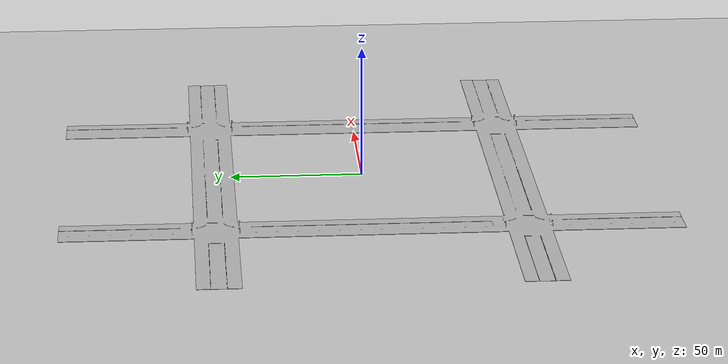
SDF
<sdf version="1.6">
 <world name="default">
  <light name="sun" type="directional">
   <pose>0 0 10 0 -0 0</pose>
   <diffuse>0.8 0.8 0.8 1</diffuse>
   <specular>0.2 0.2 0.2 1</specular>
   <attenuation>
    <range>1000</range>
    <constant>0.9</constant>
    <linear>0.01</linear>
    <quadratic>0.001</quadratic>
   </attenuation>
   <direction>-0.5 0.1 -0.9</direction>
  </light>
  <model name="ground_plane">
   <static>1</static>
   <link name="link">
    <collision name="collision">
     <geometry><plane><normal>0 0 1</normal><size>100 100</size></plane></geometry>
     <surface><friction><ode><mu>100</mu><mu2>50</mu2></ode></friction></surface>
    </collision>
    <visual name="visual">
     <cast_shadows>0</cast_shadows>
     <geometry><plane><normal>0 0 1</normal><size>100 100</size></plane></geometry>
     <material>
      <script><uri>file://media/materials/scripts/gazebo.material</uri><name>Gazebo/Grey</name></script>
     </material>
    </visual>
   </link>
  </model>
  <gravity>0 0 -9.8</gravity>
  <magnetic_field>6e-06 2.3e-05 -4.2e-05</magnetic_field>
  <atmosphere type="adiabatic"/>
  <physics name="default_physics" default="0" type="ode">
   <max_step_size>0.001</max_step_size>
   <real_time_factor>1</real_time_factor>
   <real_time_update_rate>1000</real_time_update_rate>
  </physics>
  <scene><ambient>0.4 0.4 0.4 1</ambient><background>0.7 0.7 0.7 1</background><shadows>1</shadows></scene>
  <audio><device>default</device></audio>
  <spherical_coordinates>
   <surface_model>EARTH_WGS84</surface_model>
   <latitude_deg>0</latitude_deg>
   <longitude_deg>0</longitude_deg>
   <elevation>0</elevation>
   <heading_deg>0</heading_deg>
  </spherical_coordinates>
  <model name="street8">
   <static>1</static>
   <link name="link_0">
    <inertial>
     <mass>1</mass>
     <inertia>
      <ixx>0.166667</ixx>
      <ixy>0</ixy>
      <ixz>0</ixz>
      <iyy>0.166667</iyy>
      <iyz>0</iyz>
      <izz>0.166667</izz>
     </inertia>
    </inertial>
    <pose>0 -1e-06 0 0 -0 0</pose>
    <visual name="visual">
     <geometry>
      <mesh><uri>/home/yuchen/Documents/CIS700/world02/models/street8/street8.dae</uri><scale>1 1 1</scale></mesh>
     </geometry>
    </visual>
    <collision name="collision">
     <geometry>
      <mesh><uri>/home/yuchen/Documents/CIS700/world02/models/street8/street8.dae</uri><scale>1 1 1</scale></mesh>
     </geometry>
     <surface>
      <friction>
       <ode><mu>1</mu><mu2>1</mu2><fdir1>0 0 0</fdir1><slip1>0</slip1><slip2>0</slip2></ode>
       <torsional>
        <coefficient>1</coefficient>
        <patch_radius>0</patch_radius>
        <surface_radius>0</surface_radius>
        <use_patch_radius>1</use_patch_radius>
        <ode><slip>0</slip></ode>
       </torsional>
      </friction>
      <bounce><restitution_coefficient>0</restitution_coefficient><threshold>1e+06</threshold></bounce>
      <contact>
       <collide_without_contact>0</collide_without_contact>
       <collide_without_contact_bitmask>1</collide_without_contact_bitmask>
       <collide_bitmask>1</collide_bitmask>
       <ode>
        <soft_cfm>0</soft_cfm>
        <soft_erp>0.2</soft_erp>
        <kp>1e+13</kp>
        <kd>1</kd>
        <max_vel>0.01</max_vel>
        <min_depth>0</min_depth>
       </ode>
       <bullet>
        <split_impulse>1</split_impulse>
        <split_impulse_penetration_threshold>-0.01</split_impulse_penetration_threshold>
        <soft_cfm>0</soft_cfm>
        <soft_erp>0.2</soft_erp>
        <kp>1e+13</kp>
        <kd>1</kd>
       </bullet>
      </contact>
     </surface>
    </collision>
   </link>
   <static>0</static>
   <pose>165.208 48.6835 0 0 -0 0</pose>
  </model>
  <model name="pednopass">
   <static>1</static>
   <link name="link_0">
    <inertial>
     <mass>1</mass>
     <inertia>
      <ixx>0.166667</ixx>
      <ixy>0</ixy>
      <ixz>0</ixz>
      <iyy>0.166667</iyy>
      <iyz>0</iyz>
      <izz>0.166667</izz>
     </inertia>
    </inertial>
    <pose>0 -1e-06 0 0 -0 0</pose>
    <visual name="visual">
     <geometry>
      <mesh>
       <uri>/home/yuchen/Documents/CIS700/world02/models/pednopass/pednopass.dae</uri>
       <scale>1 1 1</scale>
      </mesh>
     </geometry>
    </visual>
    <collision name="collision">
     <geometry>
      <mesh>
       <uri>/home/yuchen/Documents/CIS700/world02/models/pednopass/pednopass.dae</uri>
       <scale>1 1 1</scale>
      </mesh>
     </geometry>
     <surface>
      <friction>
       <ode><mu>1</mu><mu2>1</mu2><fdir1>0 0 0</fdir1><slip1>0</slip1><slip2>0</slip2></ode>
       <torsional>
        <coefficient>1</coefficient>
        <patch_radius>0</patch_radius>
        <surface_radius>0</surface_radius>
        <use_patch_radius>1</use_patch_radius>
        <ode><slip>0</slip></ode>
       </torsional>
      </friction>
      <bounce><restitution_coefficient>0</restitution_coefficient><threshold>1e+06</threshold></bounce>
      <contact>
       <collide_without_contact>0</collide_without_contact>
       <collide_without_contact_bitmask>1</collide_without_contact_bitmask>
       <collide_bitmask>1</collide_bitmask>
       <ode>
        <soft_cfm>0</soft_cfm>
        <soft_erp>0.2</soft_erp>
        <kp>1e+13</kp>
        <kd>1</kd>
        <max_vel>0.01</max_vel>
        <min_depth>0</min_depth>
       </ode>
       <bullet>
        <split_impulse>1</split_impulse>
        <split_impulse_penetration_threshold>-0.01</split_impulse_penetration_threshold>
        <soft_cfm>0</soft_cfm>
        <soft_erp>0.2</soft_erp>
        <kp>1e+13</kp>
        <kd>1</kd>
       </bullet>
      </contact>
     </surface>
    </collision>
   </link>
   <static>0</static>
   <pose>60.2224 -48.0565 0 0 -0 0</pose>
  </model>
  <model name="pednopass_0">
   <static>1</static>
   <link name="link_0">
    <inertial>
     <mass>1</mass>
     <inertia>
      <ixx>0.166667</ixx>
      <ixy>0</ixy>
      <ixz>0</ixz>
      <iyy>0.166667</iyy>
      <iyz>0</iyz>
      <izz>0.166667</izz>
     </inertia>
    </inertial>
    <pose>0 -1e-06 0 0 -0 0</pose>
    <visual name="visual">
     <geometry>
      <mesh>
       <uri>/home/yuchen/Documents/CIS700/world02/models/pednopass/pednopass.dae</uri>
       <scale>1 1 1</scale>
      </mesh>
     </geometry>
    </visual>
    <collision name="collision">
     <geometry>
      <mesh>
       <uri>/home/yuchen/Documents/CIS700/world02/models/pednopass/pednopass.dae</uri>
       <scale>1 1 1</scale>
      </mesh>
     </geometry>
     <surface>
      <friction>
       <ode><mu>1</mu><mu2>1</mu2><fdir1>0 0 0</fdir1><slip1>0</slip1><slip2>0</slip2></ode>
       <torsional>
        <coefficient>1</coefficient>
        <patch_radius>0</patch_radius>
        <surface_radius>0</surface_radius>
        <use_patch_radius>1</use_patch_radius>
        <ode><slip>0</slip></ode>
       </torsional>
      </friction>
      <bounce><restitution_coefficient>0</restitution_coefficient><threshold>1e+06</threshold></bounce>
      <contact>
       <collide_without_contact>0</collide_without_contact>
       <collide_without_contact_bitmask>1</collide_without_contact_bitmask>
       <collide_bitmask>1</collide_bitmask>
       <ode>
        <soft_cfm>0</soft_cfm>
        <soft_erp>0.2</soft_erp>
        <kp>1e+13</kp>
        <kd>1</kd>
        <max_vel>0.01</max_vel>
        <min_depth>0</min_depth>
       </ode>
       <bullet>
        <split_impulse>1</split_impulse>
        <split_impulse_penetration_threshold>-0.01</split_impulse_penetration_threshold>
        <soft_cfm>0</soft_cfm>
        <soft_erp>0.2</soft_erp>
        <kp>1e+13</kp>
        <kd>1</kd>
       </bullet>
      </contact>
     </surface>
    </collision>
   </link>
   <static>0</static>
   <pose>53.1473 -48.0563 0 0 -0 3.09844</pose>
  </model>
  <model name="pednopass_0_clone">
   <static>1</static>
   <link name="link_0">
    <inertial>
     <mass>1</mass>
     <inertia>
      <ixx>0.166667</ixx>
      <ixy>0</ixy>
      <ixz>0</ixz>
      <iyy>0.166667</iyy>
      <iyz>0</iyz>
      <izz>0.166667</izz>
     </inertia>
    </inertial>
    <pose>0 -1e-06 0 0 -0 0</pose>
    <visual name="visual">
     <geometry>
      <mesh>
       <uri>/home/yuchen/Documents/CIS700/world02/models/pednopass/pednopass.dae</uri>
       <scale>1 1 1</scale>
      </mesh>
     </geometry>
    </visual>
    <collision name="collision">
     <geometry>
      <mesh>
       <uri>/home/yuchen/Documents/CIS700/world02/models/pednopass/pednopass.dae</uri>
       <scale>1 1 1</scale>
      </mesh>
     </geometry>
     <surface>
      <friction>
       <ode><mu>1</mu><mu2>1</mu2><fdir1>0 0 0</fdir1><slip1>0</slip1><slip2>0</slip2></ode>
       <torsional>
        <coefficient>1</coefficient>
        <patch_radius>0</patch_radius>
        <surface_radius>0</surface_radius>
        <use_patch_radius>1</use_patch_radius>
        <ode><slip>0</slip></ode>
       </torsional>
      </friction>
      <bounce><restitution_coefficient>0</restitution_coefficient><threshold>1e+06</threshold></bounce>
      <contact>
       <collide_without_contact>0</collide_without_contact>
       <collide_without_contact_bitmask>1</collide_without_contact_bitmask>
       <collide_bitmask>1</collide_bitmask>
       <ode>
        <soft_cfm>0</soft_cfm>
        <soft_erp>0.2</soft_erp>
        <kp>1e+13</kp>
        <kd>1</kd>
        <max_vel>0.01</max_vel>
        <min_depth>0</min_depth>
       </ode>
       <bullet>
        <split_impulse>1</split_impulse>
        <split_impulse_penetration_threshold>-0.01</split_impulse_penetration_threshold>
        <soft_cfm>0</soft_cfm>
        <soft_erp>0.2</soft_erp>
        <kp>1e+13</kp>
        <kd>1</kd>
       </bullet>
      </contact>
     </surface>
    </collision>
   </link>
   <static>0</static>
   <pose>52.9821 -65.0128 0 0 -0 3.09844</pose>
  </model>
  <model name="pednopass_clone">
   <static>1</static>
   <link name="link_0">
    <inertial>
     <mass>1</mass>
     <inertia>
      <ixx>0.166667</ixx>
      <ixy>0</ixy>
      <ixz>0</ixz>
      <iyy>0.166667</iyy>
      <iyz>0</iyz>
      <izz>0.166667</izz>
     </inertia>
    </inertial>
    <pose>0 -1e-06 0 0 -0 0</pose>
    <visual name="visual">
     <geometry>
      <mesh>
       <uri>/home/yuchen/Documents/CIS700/world02/models/pednopass/pednopass.dae</uri>
       <scale>1 1 1</scale>
      </mesh>
     </geometry>
    </visual>
    <collision name="collision">
     <geometry>
      <mesh>
       <uri>/home/yuchen/Documents/CIS700/world02/models/pednopass/pednopass.dae</uri>
       <scale>1 1 1</scale>
      </mesh>
     </geometry>
     <surface>
      <friction>
       <ode><mu>1</mu><mu2>1</mu2><fdir1>0 0 0</fdir1><slip1>0</slip1><slip2>0</slip2></ode>
       <torsional>
        <coefficient>1</coefficient>
        <patch_radius>0</patch_radius>
        <surface_radius>0</surface_radius>
        <use_patch_radius>1</use_patch_radius>
        <ode><slip>0</slip></ode>
       </torsional>
      </friction>
      <bounce><restitution_coefficient>0</restitution_coefficient><threshold>1e+06</threshold></bounce>
      <contact>
       <collide_without_contact>0</collide_without_contact>
       <collide_without_contact_bitmask>1</collide_without_contact_bitmask>
       <collide_bitmask>1</collide_bitmask>
       <ode>
        <soft_cfm>0</soft_cfm>
        <soft_erp>0.2</soft_erp>
        <kp>1e+13</kp>
        <kd>1</kd>
        <max_vel>0.01</max_vel>
        <min_depth>0</min_depth>
       </ode>
       <bullet>
        <split_impulse>1</split_impulse>
        <split_impulse_penetration_threshold>-0.01</split_impulse_penetration_threshold>
        <soft_cfm>0</soft_cfm>
        <soft_erp>0.2</soft_erp>
        <kp>1e+13</kp>
        <kd>1</kd>
       </bullet>
      </contact>
     </surface>
    </collision>
   </link>
   <static>0</static>
   <pose>60.3506 -65.167 0 0 -0 0</pose>
  </model>
  <model name="pednopass_clone_0">
   <static>1</static>
   <link name="link_0">
    <inertial>
     <mass>1</mass>
     <inertia>
      <ixx>0.166667</ixx>
      <ixy>0</ixy>
      <ixz>0</ixz>
      <iyy>0.166667</iyy>
      <iyz>0</iyz>
      <izz>0.166667</izz>
     </inertia>
    </inertial>
    <pose>0 -1e-06 0 0 -0 0</pose>
    <visual name="visual">
     <geometry>
      <mesh>
       <uri>/home/yuchen/Documents/CIS700/world02/models/pednopass/pednopass.dae</uri>
       <scale>1 1 1</scale>
      </mesh>
     </geometry>
    </visual>
    <collision name="collision">
     <geometry>
      <mesh>
       <uri>/home/yuchen/Documents/CIS700/world02/models/pednopass/pednopass.dae</uri>
       <scale>1 1 1</scale>
      </mesh>
     </geometry>
     <surface>
      <friction>
       <ode><mu>1</mu><mu2>1</mu2><fdir1>0 0 0</fdir1><slip1>0</slip1><slip2>0</slip2></ode>
       <torsional>
        <coefficient>1</coefficient>
        <patch_radius>0</patch_radius>
        <surface_radius>0</surface_radius>
        <use_patch_radius>1</use_patch_radius>
        <ode><slip>0</slip></ode>
       </torsional>
      </friction>
      <bounce><restitution_coefficient>0</restitution_coefficient><threshold>1e+06</threshold></bounce>
      <contact>
       <collide_without_contact>0</collide_without_contact>
       <collide_without_contact_bitmask>1</collide_without_contact_bitmask>
       <collide_bitmask>1</collide_bitmask>
       <ode>
        <soft_cfm>0</soft_cfm>
        <soft_erp>0.2</soft_erp>
        <kp>1e+13</kp>
        <kd>1</kd>
        <max_vel>0.01</max_vel>
        <min_depth>0</min_depth>
       </ode>
       <bullet>
        <split_impulse>1</split_impulse>
        <split_impulse_penetration_threshold>-0.01</split_impulse_penetration_threshold>
        <soft_cfm>0</soft_cfm>
        <soft_erp>0.2</soft_erp>
        <kp>1e+13</kp>
        <kd>1</kd>
       </bullet>
      </contact>
     </surface>
    </collision>
   </link>
   <static>0</static>
   <pose>60.1809 47.9525 0 0 -0 0</pose>
  </model>
  <model name="pednopass_0_clone_0">
   <static>1</static>
   <link name="link_0">
    <inertial>
     <mass>1</mass>
     <inertia>
      <ixx>0.166667</ixx>
      <ixy>0</ixy>
      <ixz>0</ixz>
      <iyy>0.166667</iyy>
      <iyz>0</iyz>
      <izz>0.166667</izz>
     </inertia>
    </inertial>
    <pose>0 -1e-06 0 0 -0 0</pose>
    <visual name="visual">
     <geometry>
      <mesh>
       <uri>/home/yuchen/Documents/CIS700/world02/models/pednopass/pednopass.dae</uri>
       <scale>1 1 1</scale>
      </mesh>
     </geometry>
    </visual>
    <collision name="collision">
     <geometry>
      <mesh>
       <uri>/home/yuchen/Documents/CIS700/world02/models/pednopass/pednopass.dae</uri>
       <scale>1 1 1</scale>
      </mesh>
     </geometry>
     <surface>
      <friction>
       <ode><mu>1</mu><mu2>1</mu2><fdir1>0 0 0</fdir1><slip1>0</slip1><slip2>0</slip2></ode>
       <torsional>
        <coefficient>1</coefficient>
        <patch_radius>0</patch_radius>
        <surface_radius>0</surface_radius>
        <use_patch_radius>1</use_patch_radius>
        <ode><slip>0</slip></ode>
       </torsional>
      </friction>
      <bounce><restitution_coefficient>0</restitution_coefficient><threshold>1e+06</threshold></bounce>
      <contact>
       <collide_without_contact>0</collide_without_contact>
       <collide_without_contact_bitmask>1</collide_without_contact_bitmask>
       <collide_bitmask>1</collide_bitmask>
       <ode>
        <soft_cfm>0</soft_cfm>
        <soft_erp>0.2</soft_erp>
        <kp>1e+13</kp>
        <kd>1</kd>
        <max_vel>0.01</max_vel>
        <min_depth>0</min_depth>
       </ode>
       <bullet>
        <split_impulse>1</split_impulse>
        <split_impulse_penetration_threshold>-0.01</split_impulse_penetration_threshold>
        <soft_cfm>0</soft_cfm>
        <soft_erp>0.2</soft_erp>
        <kp>1e+13</kp>
        <kd>1</kd>
       </bullet>
      </contact>
     </surface>
    </collision>
   </link>
   <static>0</static>
   <pose>53.1694 48.1307 0 0 -0 3.09844</pose>
  </model>
  <model name="pednopass_0_clone_1">
   <static>1</static>
   <link name="link_0">
    <inertial>
     <mass>1</mass>
     <inertia>
      <ixx>0.166667</ixx>
      <ixy>0</ixy>
      <ixz>0</ixz>
      <iyy>0.166667</iyy>
      <iyz>0</iyz>
      <izz>0.166667</izz>
     </inertia>
    </inertial>
    <pose>0 -1e-06 0 0 -0 0</pose>
    <visual name="visual">
     <geometry>
      <mesh>
       <uri>/home/yuchen/Documents/CIS700/world02/models/pednopass/pednopass.dae</uri>
       <scale>1 1 1</scale>
      </mesh>
     </geometry>
    </visual>
    <collision name="collision">
     <geometry>
      <mesh>
       <uri>/home/yuchen/Documents/CIS700/world02/models/pednopass/pednopass.dae</uri>
       <scale>1 1 1</scale>
      </mesh>
     </geometry>
     <surface>
      <friction>
       <ode><mu>1</mu><mu2>1</mu2><fdir1>0 0 0</fdir1><slip1>0</slip1><slip2>0</slip2></ode>
       <torsional>
        <coefficient>1</coefficient>
        <patch_radius>0</patch_radius>
        <surface_radius>0</surface_radius>
        <use_patch_radius>1</use_patch_radius>
        <ode><slip>0</slip></ode>
       </torsional>
      </friction>
      <bounce><restitution_coefficient>0</restitution_coefficient><threshold>1e+06</threshold></bounce>
      <contact>
       <collide_without_contact>0</collide_without_contact>
       <collide_without_contact_bitmask>1</collide_without_contact_bitmask>
       <collide_bitmask>1</collide_bitmask>
       <ode>
        <soft_cfm>0</soft_cfm>
        <soft_erp>0.2</soft_erp>
        <kp>1e+13</kp>
        <kd>1</kd>
        <max_vel>0.01</max_vel>
        <min_depth>0</min_depth>
       </ode>
       <bullet>
        <split_impulse>1</split_impulse>
        <split_impulse_penetration_threshold>-0.01</split_impulse_penetration_threshold>
        <soft_cfm>0</soft_cfm>
        <soft_erp>0.2</soft_erp>
        <kp>1e+13</kp>
        <kd>1</kd>
       </bullet>
      </contact>
     </surface>
    </collision>
   </link>
   <static>0</static>
   <pose>53.244 65.5207 0 0 -0 3.09844</pose>
  </model>
  <model name="pednopass_clone_0_clone">
   <static>1</static>
   <link name="link_0">
    <inertial>
     <mass>1</mass>
     <inertia>
      <ixx>0.166667</ixx>
      <ixy>0</ixy>
      <ixz>0</ixz>
      <iyy>0.166667</iyy>
      <iyz>0</iyz>
      <izz>0.166667</izz>
     </inertia>
    </inertial>
    <pose>0 -1e-06 0 0 -0 0</pose>
    <visual name="visual">
     <geometry>
      <mesh>
       <uri>/home/yuchen/Documents/CIS700/world02/models/pednopass/pednopass.dae</uri>
       <scale>1 1 1</scale>
      </mesh>
     </geometry>
    </visual>
    <collision name="collision">
     <geometry>
      <mesh>
       <uri>/home/yuchen/Documents/CIS700/world02/models/pednopass/pednopass.dae</uri>
       <scale>1 1 1</scale>
      </mesh>
     </geometry>
     <surface>
      <friction>
       <ode><mu>1</mu><mu2>1</mu2><fdir1>0 0 0</fdir1><slip1>0</slip1><slip2>0</slip2></ode>
       <torsional>
        <coefficient>1</coefficient>
        <patch_radius>0</patch_radius>
        <surface_radius>0</surface_radius>
        <use_patch_radius>1</use_patch_radius>
        <ode><slip>0</slip></ode>
       </torsional>
      </friction>
      <bounce><restitution_coefficient>0</restitution_coefficient><threshold>1e+06</threshold></bounce>
      <contact>
       <collide_without_contact>0</collide_without_contact>
       <collide_without_contact_bitmask>1</collide_without_contact_bitmask>
       <collide_bitmask>1</collide_bitmask>
       <ode>
        <soft_cfm>0</soft_cfm>
        <soft_erp>0.2</soft_erp>
        <kp>1e+13</kp>
        <kd>1</kd>
        <max_vel>0.01</max_vel>
        <min_depth>0</min_depth>
       </ode>
       <bullet>
        <split_impulse>1</split_impulse>
        <split_impulse_penetration_threshold>-0.01</split_impulse_penetration_threshold>
        <soft_cfm>0</soft_cfm>
        <soft_erp>0.2</soft_erp>
        <kp>1e+13</kp>
        <kd>1</kd>
       </bullet>
      </contact>
     </surface>
    </collision>
   </link>
   <static>0</static>
   <pose>60.19 65.3274 0 0 -0 0</pose>
  </model>
  <model name="pednopass_0_clone_2">
   <static>1</static>
   <link name="link_0">
    <inertial>
     <mass>1</mass>
     <inertia>
      <ixx>0.166667</ixx>
      <ixy>0</ixy>
      <ixz>0</ixz>
      <iyy>0.166667</iyy>
      <iyz>0</iyz>
      <izz>0.166667</izz>
     </inertia>
    </inertial>
    <pose>0 -1e-06 0 0 -0 0</pose>
    <visual name="visual">
     <geometry>
      <mesh>
       <uri>/home/yuchen/Documents/CIS700/world02/models/pednopass/pednopass.dae</uri>
       <scale>1 1 1</scale>
      </mesh>
     </geometry>
    </visual>
    <collision name="collision">
     <geometry>
      <mesh>
       <uri>/home/yuchen/Documents/CIS700/world02/models/pednopass/pednopass.dae</uri>
       <scale>1 1 1</scale>
      </mesh>
     </geometry>
     <surface>
      <friction>
       <ode><mu>1</mu><mu2>1</mu2><fdir1>0 0 0</fdir1><slip1>0</slip1><slip2>0</slip2></ode>
       <torsional>
        <coefficient>1</coefficient>
        <patch_radius>0</patch_radius>
        <surface_radius>0</surface_radius>
        <use_patch_radius>1</use_patch_radius>
        <ode><slip>0</slip></ode>
       </torsional>
      </friction>
      <bounce><restitution_coefficient>0</restitution_coefficient><threshold>1e+06</threshold></bounce>
      <contact>
       <collide_without_contact>0</collide_without_contact>
       <collide_without_contact_bitmask>1</collide_without_contact_bitmask>
       <collide_bitmask>1</collide_bitmask>
       <ode>
        <soft_cfm>0</soft_cfm>
        <soft_erp>0.2</soft_erp>
        <kp>1e+13</kp>
        <kd>1</kd>
        <max_vel>0.01</max_vel>
        <min_depth>0</min_depth>
       </ode>
       <bullet>
        <split_impulse>1</split_impulse>
        <split_impulse_penetration_threshold>-0.01</split_impulse_penetration_threshold>
        <soft_cfm>0</soft_cfm>
        <soft_erp>0.2</soft_erp>
        <kp>1e+13</kp>
        <kd>1</kd>
       </bullet>
      </contact>
     </surface>
    </collision>
   </link>
   <static>0</static>
   <pose>-60.036 -47.9615 0 0 -0 3.09844</pose>
  </model>
  <model name="pednopass_0_clone_3">
   <static>1</static>
   <link name="link_0">
    <inertial>
     <mass>1</mass>
     <inertia>
      <ixx>0.166667</ixx>
      <ixy>0</ixy>
      <ixz>0</ixz>
      <iyy>0.166667</iyy>
      <iyz>0</iyz>
      <izz>0.166667</izz>
     </inertia>
    </inertial>
    <pose>0 -1e-06 0 0 -0 0</pose>
    <visual name="visual">
     <geometry>
      <mesh>
       <uri>/home/yuchen/Documents/CIS700/world02/models/pednopass/pednopass.dae</uri>
       <scale>1 1 1</scale>
      </mesh>
     </geometry>
    </visual>
    <collision name="collision">
     <geometry>
      <mesh>
       <uri>/home/yuchen/Documents/CIS700/world02/models/pednopass/pednopass.dae</uri>
       <scale>1 1 1</scale>
      </mesh>
     </geometry>
     <surface>
      <friction>
       <ode><mu>1</mu><mu2>1</mu2><fdir1>0 0 0</fdir1><slip1>0</slip1><slip2>0</slip2></ode>
       <torsional>
        <coefficient>1</coefficient>
        <patch_radius>0</patch_radius>
        <surface_radius>0</surface_radius>
        <use_patch_radius>1</use_patch_radius>
        <ode><slip>0</slip></ode>
       </torsional>
      </friction>
      <bounce><restitution_coefficient>0</restitution_coefficient><threshold>1e+06</threshold></bounce>
      <contact>
       <collide_without_contact>0</collide_without_contact>
       <collide_without_contact_bitmask>1</collide_without_contact_bitmask>
       <collide_bitmask>1</collide_bitmask>
       <ode>
        <soft_cfm>0</soft_cfm>
        <soft_erp>0.2</soft_erp>
        <kp>1e+13</kp>
        <kd>1</kd>
        <max_vel>0.01</max_vel>
        <min_depth>0</min_depth>
       </ode>
       <bullet>
        <split_impulse>1</split_impulse>
        <split_impulse_penetration_threshold>-0.01</split_impulse_penetration_threshold>
        <soft_cfm>0</soft_cfm>
        <soft_erp>0.2</soft_erp>
        <kp>1e+13</kp>
        <kd>1</kd>
       </bullet>
      </contact>
     </surface>
    </collision>
   </link>
   <static>0</static>
   <pose>-60.0579 -65.0601 0 0 -0 3.09844</pose>
  </model>
  <model name="pednopass_clone_1">
   <static>1</static>
   <link name="link_0">
    <inertial>
     <mass>1</mass>
     <inertia>
      <ixx>0.166667</ixx>
      <ixy>0</ixy>
      <ixz>0</ixz>
      <iyy>0.166667</iyy>
      <iyz>0</iyz>
      <izz>0.166667</izz>
     </inertia>
    </inertial>
    <pose>0 -1e-06 0 0 -0 0</pose>
    <visual name="visual">
     <geometry>
      <mesh>
       <uri>/home/yuchen/Documents/CIS700/world02/models/pednopass/pednopass.dae</uri>
       <scale>1 1 1</scale>
      </mesh>
     </geometry>
    </visual>
    <collision name="collision">
     <geometry>
      <mesh>
       <uri>/home/yuchen/Documents/CIS700/world02/models/pednopass/pednopass.dae</uri>
       <scale>1 1 1</scale>
      </mesh>
     </geometry>
     <surface>
      <friction>
       <ode><mu>1</mu><mu2>1</mu2><fdir1>0 0 0</fdir1><slip1>0</slip1><slip2>0</slip2></ode>
       <torsional>
        <coefficient>1</coefficient>
        <patch_radius>0</patch_radius>
        <surface_radius>0</surface_radius>
        <use_patch_radius>1</use_patch_radius>
        <ode><slip>0</slip></ode>
       </torsional>
      </friction>
      <bounce><restitution_coefficient>0</restitution_coefficient><threshold>1e+06</threshold></bounce>
      <contact>
       <collide_without_contact>0</collide_without_contact>
       <collide_without_contact_bitmask>1</collide_without_contact_bitmask>
       <collide_bitmask>1</collide_bitmask>
       <ode>
        <soft_cfm>0</soft_cfm>
        <soft_erp>0.2</soft_erp>
        <kp>1e+13</kp>
        <kd>1</kd>
        <max_vel>0.01</max_vel>
        <min_depth>0</min_depth>
       </ode>
       <bullet>
        <split_impulse>1</split_impulse>
        <split_impulse_penetration_threshold>-0.01</split_impulse_penetration_threshold>
        <soft_cfm>0</soft_cfm>
        <soft_erp>0.2</soft_erp>
        <kp>1e+13</kp>
        <kd>1</kd>
       </bullet>
      </contact>
     </surface>
    </collision>
   </link>
   <static>0</static>
   <pose>-53.1138 -47.9879 0 0 -0 0</pose>
  </model>
  <model name="pednopass_clone_2">
   <static>1</static>
   <link name="link_0">
    <inertial>
     <mass>1</mass>
     <inertia>
      <ixx>0.166667</ixx>
      <ixy>0</ixy>
      <ixz>0</ixz>
      <iyy>0.166667</iyy>
      <iyz>0</iyz>
      <izz>0.166667</izz>
     </inertia>
    </inertial>
    <pose>0 -1e-06 0 0 -0 0</pose>
    <visual name="visual">
     <geometry>
      <mesh>
       <uri>/home/yuchen/Documents/CIS700/world02/models/pednopass/pednopass.dae</uri>
       <scale>1 1 1</scale>
      </mesh>
     </geometry>
    </visual>
    <collision name="collision">
     <geometry>
      <mesh>
       <uri>/home/yuchen/Documents/CIS700/world02/models/pednopass/pednopass.dae</uri>
       <scale>1 1 1</scale>
      </mesh>
     </geometry>
     <surface>
      <friction>
       <ode><mu>1</mu><mu2>1</mu2><fdir1>0 0 0</fdir1><slip1>0</slip1><slip2>0</slip2></ode>
       <torsional>
        <coefficient>1</coefficient>
        <patch_radius>0</patch_radius>
        <surface_radius>0</surface_radius>
        <use_patch_radius>1</use_patch_radius>
        <ode><slip>0</slip></ode>
       </torsional>
      </friction>
      <bounce><restitution_coefficient>0</restitution_coefficient><threshold>1e+06</threshold></bounce>
      <contact>
       <collide_without_contact>0</collide_without_contact>
       <collide_without_contact_bitmask>1</collide_without_contact_bitmask>
       <collide_bitmask>1</collide_bitmask>
       <ode>
        <soft_cfm>0</soft_cfm>
        <soft_erp>0.2</soft_erp>
        <kp>1e+13</kp>
        <kd>1</kd>
        <max_vel>0.01</max_vel>
        <min_depth>0</min_depth>
       </ode>
       <bullet>
        <split_impulse>1</split_impulse>
        <split_impulse_penetration_threshold>-0.01</split_impulse_penetration_threshold>
        <soft_cfm>0</soft_cfm>
        <soft_erp>0.2</soft_erp>
        <kp>1e+13</kp>
        <kd>1</kd>
       </bullet>
      </contact>
     </surface>
    </collision>
   </link>
   <static>0</static>
   <pose>-53.1867 -65.1609 0 0 -0 0</pose>
  </model>
  <model name="pednopass_clone_3">
   <static>1</static>
   <link name="link_0">
    <inertial>
     <mass>1</mass>
     <inertia>
      <ixx>0.166667</ixx>
      <ixy>0</ixy>
      <ixz>0</ixz>
      <iyy>0.166667</iyy>
      <iyz>0</iyz>
      <izz>0.166667</izz>
     </inertia>
    </inertial>
    <pose>0 -1e-06 0 0 -0 0</pose>
    <visual name="visual">
     <geometry>
      <mesh>
       <uri>/home/yuchen/Documents/CIS700/world02/models/pednopass/pednopass.dae</uri>
       <scale>1 1 1</scale>
      </mesh>
     </geometry>
    </visual>
    <collision name="collision">
     <geometry>
      <mesh>
       <uri>/home/yuchen/Documents/CIS700/world02/models/pednopass/pednopass.dae</uri>
       <scale>1 1 1</scale>
      </mesh>
     </geometry>
     <surface>
      <friction>
       <ode><mu>1</mu><mu2>1</mu2><fdir1>0 0 0</fdir1><slip1>0</slip1><slip2>0</slip2></ode>
       <torsional>
        <coefficient>1</coefficient>
        <patch_radius>0</patch_radius>
        <surface_radius>0</surface_radius>
        <use_patch_radius>1</use_patch_radius>
        <ode><slip>0</slip></ode>
       </torsional>
      </friction>
      <bounce><restitution_coefficient>0</restitution_coefficient><threshold>1e+06</threshold></bounce>
      <contact>
       <collide_without_contact>0</collide_without_contact>
       <collide_without_contact_bitmask>1</collide_without_contact_bitmask>
       <collide_bitmask>1</collide_bitmask>
       <ode>
        <soft_cfm>0</soft_cfm>
        <soft_erp>0.2</soft_erp>
        <kp>1e+13</kp>
        <kd>1</kd>
        <max_vel>0.01</max_vel>
        <min_depth>0</min_depth>
       </ode>
       <bullet>
        <split_impulse>1</split_impulse>
        <split_impulse_penetration_threshold>-0.01</split_impulse_penetration_threshold>
        <soft_cfm>0</soft_cfm>
        <soft_erp>0.2</soft_erp>
        <kp>1e+13</kp>
        <kd>1</kd>
       </bullet>
      </contact>
     </surface>
    </collision>
   </link>
   <static>0</static>
   <pose>-53.2687 65.0896 0 0 -0 0</pose>
  </model>
  <model name="pednopass_clone_4">
   <static>1</static>
   <link name="link_0">
    <inertial>
     <mass>1</mass>
     <inertia>
      <ixx>0.166667</ixx>
      <ixy>0</ixy>
      <ixz>0</ixz>
      <iyy>0.166667</iyy>
      <iyz>0</iyz>
      <izz>0.166667</izz>
     </inertia>
    </inertial>
    <pose>0 -1e-06 0 0 -0 0</pose>
    <visual name="visual">
     <geometry>
      <mesh>
       <uri>/home/yuchen/Documents/CIS700/world02/models/pednopass/pednopass.dae</uri>
       <scale>1 1 1</scale>
      </mesh>
     </geometry>
    </visual>
    <collision name="collision">
     <geometry>
      <mesh>
       <uri>/home/yuchen/Documents/CIS700/world02/models/pednopass/pednopass.dae</uri>
       <scale>1 1 1</scale>
      </mesh>
     </geometry>
     <surface>
      <friction>
       <ode><mu>1</mu><mu2>1</mu2><fdir1>0 0 0</fdir1><slip1>0</slip1><slip2>0</slip2></ode>
       <torsional>
        <coefficient>1</coefficient>
        <patch_radius>0</patch_radius>
        <surface_radius>0</surface_radius>
        <use_patch_radius>1</use_patch_radius>
        <ode><slip>0</slip></ode>
       </torsional>
      </friction>
      <bounce><restitution_coefficient>0</restitution_coefficient><threshold>1e+06</threshold></bounce>
      <contact>
       <collide_without_contact>0</collide_without_contact>
       <collide_without_contact_bitmask>1</collide_without_contact_bitmask>
       <collide_bitmask>1</collide_bitmask>
       <ode>
        <soft_cfm>0</soft_cfm>
        <soft_erp>0.2</soft_erp>
        <kp>1e+13</kp>
        <kd>1</kd>
        <max_vel>0.01</max_vel>
        <min_depth>0</min_depth>
       </ode>
       <bullet>
        <split_impulse>1</split_impulse>
        <split_impulse_penetration_threshold>-0.01</split_impulse_penetration_threshold>
        <soft_cfm>0</soft_cfm>
        <soft_erp>0.2</soft_erp>
        <kp>1e+13</kp>
        <kd>1</kd>
       </bullet>
      </contact>
     </surface>
    </collision>
   </link>
   <static>0</static>
   <pose>-53.2003 48.1207 0 0 -0 0</pose>
  </model>
  <model name="pednopass_0_clone_2_clone">
   <static>1</static>
   <link name="link_0">
    <inertial>
     <mass>1</mass>
     <inertia>
      <ixx>0.166667</ixx>
      <ixy>0</ixy>
      <ixz>0</ixz>
      <iyy>0.166667</iyy>
      <iyz>0</iyz>
      <izz>0.166667</izz>
     </inertia>
    </inertial>
    <pose>0 -1e-06 0 0 -0 0</pose>
    <visual name="visual">
     <geometry>
      <mesh>
       <uri>/home/yuchen/Documents/CIS700/world02/models/pednopass/pednopass.dae</uri>
       <scale>1 1 1</scale>
      </mesh>
     </geometry>
    </visual>
    <collision name="collision">
     <geometry>
      <mesh>
       <uri>/home/yuchen/Documents/CIS700/world02/models/pednopass/pednopass.dae</uri>
       <scale>1 1 1</scale>
      </mesh>
     </geometry>
     <surface>
      <friction>
       <ode><mu>1</mu><mu2>1</mu2><fdir1>0 0 0</fdir1><slip1>0</slip1><slip2>0</slip2></ode>
       <torsional>
        <coefficient>1</coefficient>
        <patch_radius>0</patch_radius>
        <surface_radius>0</surface_radius>
        <use_patch_radius>1</use_patch_radius>
        <ode><slip>0</slip></ode>
       </torsional>
      </friction>
      <bounce><restitution_coefficient>0</restitution_coefficient><threshold>1e+06</threshold></bounce>
      <contact>
       <collide_without_contact>0</collide_without_contact>
       <collide_without_contact_bitmask>1</collide_without_contact_bitmask>
       <collide_bitmask>1</collide_bitmask>
       <ode>
        <soft_cfm>0</soft_cfm>
        <soft_erp>0.2</soft_erp>
        <kp>1e+13</kp>
        <kd>1</kd>
        <max_vel>0.01</max_vel>
        <min_depth>0</min_depth>
       </ode>
       <bullet>
        <split_impulse>1</split_impulse>
        <split_impulse_penetration_threshold>-0.01</split_impulse_penetration_threshold>
        <soft_cfm>0</soft_cfm>
        <soft_erp>0.2</soft_erp>
        <kp>1e+13</kp>
        <kd>1</kd>
       </bullet>
      </contact>
     </surface>
    </collision>
   </link>
   <static>0</static>
   <pose>-59.9263 65.3386 0 0 -0 3.09844</pose>
  </model>
  <model name="pednopass_0_clone_2_clone_0">
   <static>1</static>
   <link name="link_0">
    <inertial>
     <mass>1</mass>
     <inertia>
      <ixx>0.166667</ixx>
      <ixy>0</ixy>
      <ixz>0</ixz>
      <iyy>0.166667</iyy>
      <iyz>0</iyz>
      <izz>0.166667</izz>
     </inertia>
    </inertial>
    <pose>0 -1e-06 0 0 -0 0</pose>
    <visual name="visual">
     <geometry>
      <mesh>
       <uri>/home/yuchen/Documents/CIS700/world02/models/pednopass/pednopass.dae</uri>
       <scale>1 1 1</scale>
      </mesh>
     </geometry>
    </visual>
    <collision name="collision">
     <geometry>
      <mesh>
       <uri>/home/yuchen/Documents/CIS700/world02/models/pednopass/pednopass.dae</uri>
       <scale>1 1 1</scale>
      </mesh>
     </geometry>
     <surface>
      <friction>
       <ode><mu>1</mu><mu2>1</mu2><fdir1>0 0 0</fdir1><slip1>0</slip1><slip2>0</slip2></ode>
       <torsional>
        <coefficient>1</coefficient>
        <patch_radius>0</patch_radius>
        <surface_radius>0</surface_radius>
        <use_patch_radius>1</use_patch_radius>
        <ode><slip>0</slip></ode>
       </torsional>
      </friction>
      <bounce><restitution_coefficient>0</restitution_coefficient><threshold>1e+06</threshold></bounce>
      <contact>
       <collide_without_contact>0</collide_without_contact>
       <collide_without_contact_bitmask>1</collide_without_contact_bitmask>
       <collide_bitmask>1</collide_bitmask>
       <ode>
        <soft_cfm>0</soft_cfm>
        <soft_erp>0.2</soft_erp>
        <kp>1e+13</kp>
        <kd>1</kd>
        <max_vel>0.01</max_vel>
        <min_depth>0</min_depth>
       </ode>
       <bullet>
        <split_impulse>1</split_impulse>
        <split_impulse_penetration_threshold>-0.01</split_impulse_penetration_threshold>
        <soft_cfm>0</soft_cfm>
        <soft_erp>0.2</soft_erp>
        <kp>1e+13</kp>
        <kd>1</kd>
       </bullet>
      </contact>
     </surface>
    </collision>
   </link>
   <static>0</static>
   <pose>-60.225 48.1878 0 0 -0 3.09844</pose>
  </model>
 </world>
</sdf>
